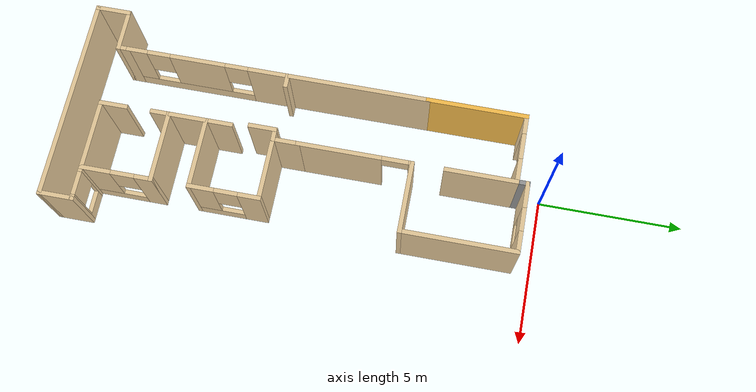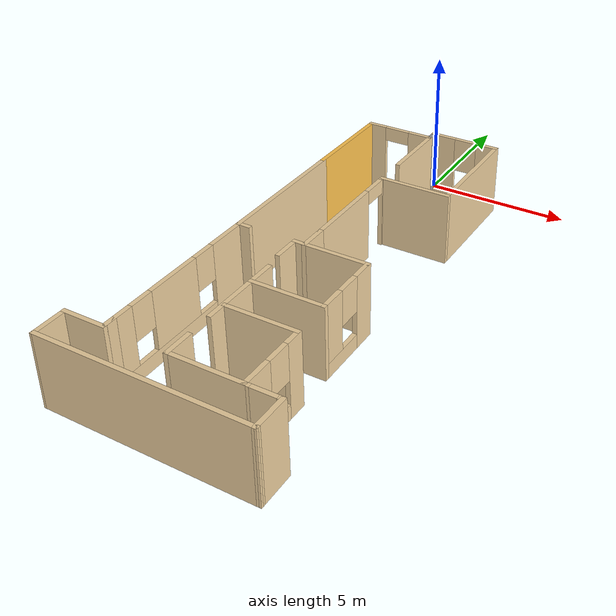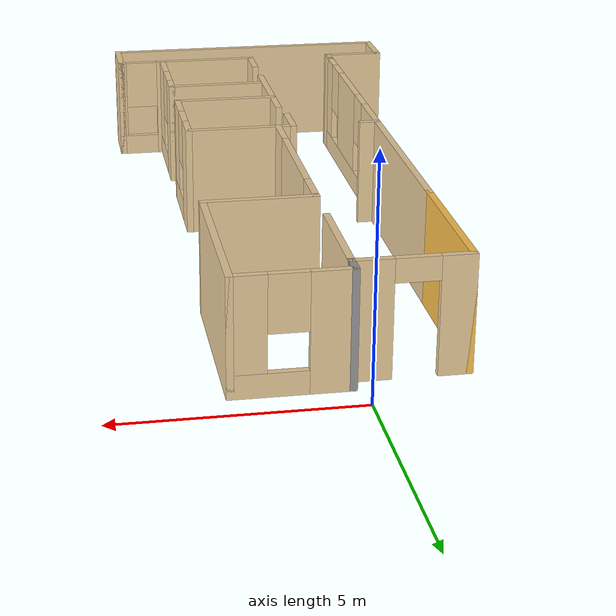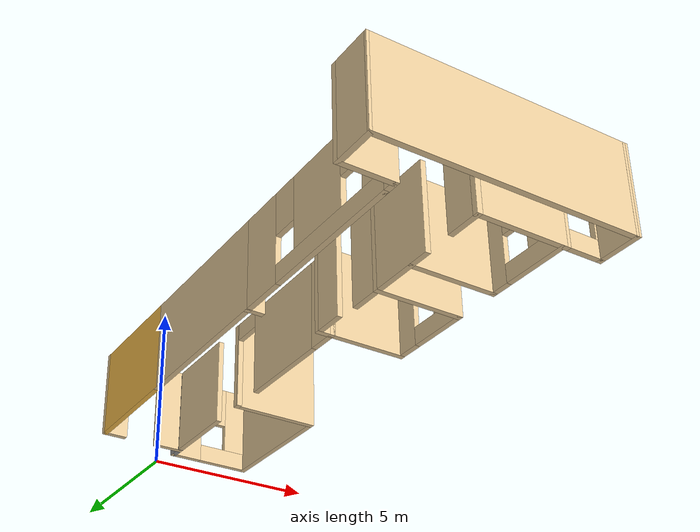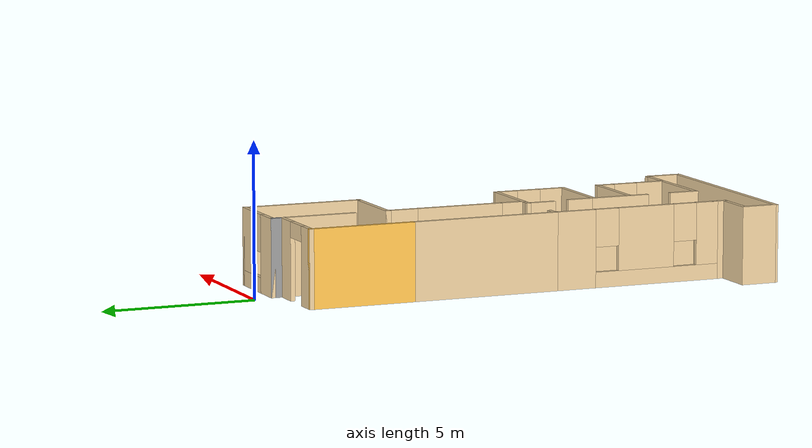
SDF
<?xml version='1.0'?>
<sdf version='1.6'>
  <model name='my_appartment'>
    <pose frame=''>-0.015 -8.49511 0 0 -0 0</pose>
    <link name='Wall_1'>
      <pose frame=''>-0.93 7.45511 0 0 -0 0</pose>
      <visual name='Wall_1_Visual_0'>
        <pose frame=''>-0.8975 0 1.25 0 -0 0</pose>
        <geometry>
          <box>
            <size>0.705 0.15 2.5</size>
          </box>
        </geometry>
        <material>
          <script>
            <uri>file://media/materials/scripts/gazebo.material</uri>
            <name>Gazebo/Grey</name>
          </script>
          <ambient>0.921569 0.807843 0.615686 1</ambient>
        </material>
        <meta>
          <layer>0</layer>
        </meta>
      </visual>
      <collision name='Wall_1_Collision_0'>
        <geometry>
          <box>
            <size>0.705 0.15 2.5</size>
          </box>
        </geometry>
        <pose frame=''>-0.8975 0 1.25 0 -0 0</pose>
      </collision>
      <visual name='Wall_1_Visual_1'>
        <pose frame=''>0.8025 0 1.25 0 -0 0</pose>
        <geometry>
          <box>
            <size>0.895 0.15 2.5</size>
          </box>
        </geometry>
        <material>
          <script>
            <uri>file://media/materials/scripts/gazebo.material</uri>
            <name>Gazebo/Grey</name>
          </script>
          <ambient>0.921569 0.807843 0.615686 1</ambient>
        </material>
        <meta>
          <layer>0</layer>
        </meta>
      </visual>
      <collision name='Wall_1_Collision_1'>
        <geometry>
          <box>
            <size>0.895 0.15 2.5</size>
          </box>
        </geometry>
        <pose frame=''>0.8025 0 1.25 0 -0 0</pose>
      </collision>
      <visual name='Wall_1_Visual_2'>
        <pose frame=''>-0.095 0 2.25 0 -0 0</pose>
        <geometry>
          <box>
            <size>0.9 0.15 0.5</size>
          </box>
        </geometry>
        <material>
          <script>
            <uri>file://media/materials/scripts/gazebo.material</uri>
            <name>Gazebo/Grey</name>
          </script>
          <ambient>0.921569 0.807843 0.615686 1</ambient>
        </material>
        <meta>
          <layer>0</layer>
        </meta>
      </visual>
      <collision name='Wall_1_Collision_2'>
        <geometry>
          <box>
            <size>0.9 0.15 0.5</size>
          </box>
        </geometry>
        <pose frame=''>-0.095 0 2.25 0 -0 0</pose>
      </collision>
    </link>
    <link name='Wall_11'>
      <pose frame=''>0.245 2.04011 0 0 0 -1.5708</pose>
      <visual name='Wall_11_Visual_0'>
        <pose frame=''>-1.9025 0 1.25 0 -0 0</pose>
        <geometry>
          <box>
            <size>0.195 0.15 2.5</size>
          </box>
        </geometry>
        <material>
          <script>
            <uri>file://media/materials/scripts/gazebo.material</uri>
            <name>Gazebo/Grey</name>
          </script>
          <ambient>0.921569 0.807843 0.615686 1</ambient>
        </material>
        <meta>
          <layer>0</layer>
        </meta>
      </visual>
      <collision name='Wall_11_Collision_0'>
        <geometry>
          <box>
            <size>0.195 0.15 2.5</size>
          </box>
        </geometry>
        <pose frame=''>-1.9025 0 1.25 0 -0 0</pose>
      </collision>
      <visual name='Wall_11_Visual_1'>
        <pose frame=''>0.5475 0 1.25 0 -0 0</pose>
        <geometry>
          <box>
            <size>2.905 0.15 2.5</size>
          </box>
        </geometry>
        <material>
          <script>
            <uri>file://media/materials/scripts/gazebo.material</uri>
            <name>Gazebo/Grey</name>
          </script>
          <ambient>0.921569 0.807843 0.615686 1</ambient>
        </material>
        <meta>
          <layer>0</layer>
        </meta>
      </visual>
      <collision name='Wall_11_Collision_1'>
        <geometry>
          <box>
            <size>2.905 0.15 2.5</size>
          </box>
        </geometry>
        <pose frame=''>0.5475 0 1.25 0 -0 0</pose>
      </collision>
      <visual name='Wall_11_Visual_2'>
        <pose frame=''>-1.355 0 2.25 0 -0 0</pose>
        <geometry>
          <box>
            <size>0.9 0.15 0.5</size>
          </box>
        </geometry>
        <material>
          <script>
            <uri>file://media/materials/scripts/gazebo.material</uri>
            <name>Gazebo/Grey</name>
          </script>
          <ambient>0.921569 0.807843 0.615686 1</ambient>
        </material>
        <meta>
          <layer>0</layer>
        </meta>
      </visual>
      <collision name='Wall_11_Collision_2'>
        <geometry>
          <box>
            <size>0.9 0.15 0.5</size>
          </box>
        </geometry>
        <pose frame=''>-1.355 0 2.25 0 -0 0</pose>
      </collision>
    </link>
    <link name='Wall_13'>
      <collision name='Wall_13_Collision'>
        <geometry>
          <box>
            <size>1 0.15 2.5</size>
          </box>
        </geometry>
        <pose frame=''>0 0 1.25 0 -0 0</pose>
      </collision>
      <visual name='Wall_13_Visual'>
        <pose frame=''>0 0 1.25 0 -0 0</pose>
        <geometry>
          <box>
            <size>1 0.15 2.5</size>
          </box>
        </geometry>
        <material>
          <script>
            <uri>file://media/materials/scripts/gazebo.material</uri>
            <name>Gazebo/Grey</name>
          </script>
          <ambient>0.921569 0.807843 0.615686 1</ambient>
        </material>
        <meta>
          <layer>0</layer>
        </meta>
      </visual>
      <pose frame=''>0.245 -0.309893 0 0 0 -1.5708</pose>
    </link>
    <link name='Wall_15'>
      <collision name='Wall_15_Collision'>
        <geometry>
          <box>
            <size>3.5 0.15 2.5</size>
          </box>
        </geometry>
        <pose frame=''>0 0 1.25 0 -0 0</pose>
      </collision>
      <visual name='Wall_15_Visual'>
        <pose frame=''>0 0 1.25 0 -0 0</pose>
        <geometry>
          <box>
            <size>3.5 0.15 2.5</size>
          </box>
        </geometry>
        <material>
          <script>
            <uri>file://media/materials/scripts/gazebo.material</uri>
            <name>Gazebo/Grey</name>
          </script>
          <ambient>1 0.764706 0.305882 1</ambient>
        </material>
        <meta>
          <layer>0</layer>
        </meta>
      </visual>
      <pose frame=''>-2.105 5.78011 0 0 0 -1.5708</pose>
    </link>
    <link name='Wall_18'>
      <collision name='Wall_18_Collision'>
        <geometry>
          <box>
            <size>5 0.15 2.5</size>
          </box>
        </geometry>
        <pose frame=''>0 0 1.25 0 -0 0</pose>
      </collision>
      <visual name='Wall_18_Visual'>
        <pose frame=''>0 0 1.25 0 -0 0</pose>
        <geometry>
          <box>
            <size>5 0.15 2.5</size>
          </box>
        </geometry>
        <material>
          <script>
            <uri>file://media/materials/scripts/gazebo.material</uri>
            <name>Gazebo/Grey</name>
          </script>
          <ambient>0.921569 0.807843 0.615686 1</ambient>
        </material>
        <meta>
          <layer>0</layer>
        </meta>
      </visual>
      <pose frame=''>-2.105 1.68011 0 0 0 -1.5708</pose>
    </link>
    <link name='Wall_19'>
      <collision name='Wall_19_Collision'>
        <geometry>
          <box>
            <size>0.5 0.15 2.5</size>
          </box>
        </geometry>
        <pose frame=''>0 0 1.25 0 -0 0</pose>
      </collision>
      <visual name='Wall_19_Visual'>
        <pose frame=''>0 0 1.25 0 -0 0</pose>
        <geometry>
          <box>
            <size>0.5 0.15 2.5</size>
          </box>
        </geometry>
        <material>
          <script>
            <uri>file://media/materials/scripts/gazebo.material</uri>
            <name>Gazebo/Grey</name>
          </script>
          <ambient>0.921569 0.807843 0.615686 1</ambient>
        </material>
        <meta>
          <layer>0</layer>
        </meta>
      </visual>
      <pose frame=''>-1.93 -0.744892 0 0 -0 0</pose>
    </link>
    <link name='Wall_2'>
      <collision name='Wall_2_Collision'>
        <geometry>
          <box>
            <size>0.52 0.15 2.5</size>
          </box>
        </geometry>
        <pose frame=''>0 0 1.25 0 -0 0</pose>
      </collision>
      <visual name='Wall_2_Visual'>
        <pose frame=''>0 0 1.25 0 -0 0</pose>
        <geometry>
          <box>
            <size>0.52 0.15 2.5</size>
          </box>
        </geometry>
        <material>
          <script>
            <uri>file://media/materials/scripts/gazebo.material</uri>
            <name>Gazebo/Grey</name>
          </script>
          <ambient>1 1 1 1</ambient>
        </material>
        <meta>
          <layer>0</layer>
        </meta>
      </visual>
      <pose frame=''>0.245 7.63011 0 0 -0 1.5708</pose>
    </link>
    <link name='Wall_21'>
      <collision name='Wall_21_Collision'>
        <geometry>
          <box>
            <size>0.5 0.15 2.5</size>
          </box>
        </geometry>
        <pose frame=''>0 0 1.25 0 -0 0</pose>
      </collision>
      <visual name='Wall_21_Visual'>
        <pose frame=''>0 0 1.25 0 -0 0</pose>
        <geometry>
          <box>
            <size>0.5 0.15 2.5</size>
          </box>
        </geometry>
        <material>
          <script>
            <uri>file://media/materials/scripts/gazebo.material</uri>
            <name>Gazebo/Grey</name>
          </script>
          <ambient>0.921569 0.807843 0.615686 1</ambient>
        </material>
        <meta>
          <layer>0</layer>
        </meta>
      </visual>
      <pose frame=''>0.07 -0.734892 0 0 -0 3.14159</pose>
    </link>
    <link name='Wall_23'>
      <collision name='Wall_23_Collision'>
        <geometry>
          <box>
            <size>1 0.15 2.5</size>
          </box>
        </geometry>
        <pose frame=''>0 0 1.25 0 -0 0</pose>
      </collision>
      <visual name='Wall_23_Visual'>
        <pose frame=''>0 0 1.25 0 -0 0</pose>
        <geometry>
          <box>
            <size>1 0.15 2.5</size>
          </box>
        </geometry>
        <material>
          <script>
            <uri>file://media/materials/scripts/gazebo.material</uri>
            <name>Gazebo/Grey</name>
          </script>
          <ambient>0.921569 0.807843 0.615686 1</ambient>
        </material>
        <meta>
          <layer>0</layer>
        </meta>
      </visual>
      <pose frame=''>-0.105 -1.15989 0 0 0 -1.5708</pose>
    </link>
    <link name='Wall_25'>
      <collision name='Wall_25_Collision'>
        <geometry>
          <box>
            <size>2.25 0.15 2.5</size>
          </box>
        </geometry>
        <pose frame=''>0 0 1.25 0 -0 0</pose>
      </collision>
      <visual name='Wall_25_Visual'>
        <pose frame=''>0 0 1.25 0 -0 0</pose>
        <geometry>
          <box>
            <size>2.25 0.15 2.5</size>
          </box>
        </geometry>
        <material>
          <script>
            <uri>file://media/materials/scripts/gazebo.material</uri>
            <name>Gazebo/Grey</name>
          </script>
          <ambient>0.921569 0.807843 0.615686 1</ambient>
        </material>
        <meta>
          <layer>0</layer>
        </meta>
      </visual>
      <pose frame=''>1.295 -0.734892 0 0 -0 0</pose>
    </link>
    <link name='Wall_26'>
      <pose frame=''>2.345 -1.90989 0 0 0 -1.5708</pose>
      <visual name='Wall_26_Visual_0'>
        <pose frame=''>-0.8575 0 1.25 0 -0 0</pose>
        <geometry>
          <box>
            <size>0.785 0.15 2.5</size>
          </box>
        </geometry>
        <material>
          <script>
            <uri>file://media/materials/scripts/gazebo.material</uri>
            <name>Gazebo/Grey</name>
          </script>
          <ambient>0.921569 0.807843 0.615686 1</ambient>
        </material>
        <meta>
          <layer>0</layer>
        </meta>
      </visual>
      <collision name='Wall_26_Collision_0'>
        <geometry>
          <box>
            <size>0.785 0.15 2.5</size>
          </box>
        </geometry>
        <pose frame=''>-0.8575 0 1.25 0 -0 0</pose>
      </collision>
      <visual name='Wall_26_Visual_1'>
        <pose frame=''>0.3925 0 0.25 0 -0 0</pose>
        <geometry>
          <box>
            <size>1.715 0.15 0.5</size>
          </box>
        </geometry>
        <material>
          <script>
            <uri>file://media/materials/scripts/gazebo.material</uri>
            <name>Gazebo/Grey</name>
          </script>
          <ambient>0.921569 0.807843 0.615686 1</ambient>
        </material>
        <meta>
          <layer>0</layer>
        </meta>
      </visual>
      <collision name='Wall_26_Collision_1'>
        <geometry>
          <box>
            <size>1.715 0.15 0.5</size>
          </box>
        </geometry>
        <pose frame=''>0.3925 0 0.25 0 -0 0</pose>
      </collision>
      <visual name='Wall_26_Visual_2'>
        <pose frame=''>0.7925 0 1.5 0 -0 0</pose>
        <geometry>
          <box>
            <size>0.915 0.15 2</size>
          </box>
        </geometry>
        <material>
          <script>
            <uri>file://media/materials/scripts/gazebo.material</uri>
            <name>Gazebo/Grey</name>
          </script>
          <ambient>0.921569 0.807843 0.615686 1</ambient>
        </material>
        <meta>
          <layer>0</layer>
        </meta>
      </visual>
      <collision name='Wall_26_Collision_2'>
        <geometry>
          <box>
            <size>0.915 0.15 2</size>
          </box>
        </geometry>
        <pose frame=''>0.7925 0 1.5 0 -0 0</pose>
      </collision>
      <visual name='Wall_26_Visual_3'>
        <pose frame=''>-0.065 0 1.9 0 -0 0</pose>
        <geometry>
          <box>
            <size>0.8 0.15 1.2</size>
          </box>
        </geometry>
        <material>
          <script>
            <uri>file://media/materials/scripts/gazebo.material</uri>
            <name>Gazebo/Grey</name>
          </script>
          <ambient>0.921569 0.807843 0.615686 1</ambient>
        </material>
        <meta>
          <layer>0</layer>
        </meta>
      </visual>
      <collision name='Wall_26_Collision_3'>
        <geometry>
          <box>
            <size>0.8 0.15 1.2</size>
          </box>
        </geometry>
        <pose frame=''>-0.065 0 1.9 0 -0 0</pose>
      </collision>
    </link>
    <link name='Wall_29'>
      <collision name='Wall_29_Collision'>
        <geometry>
          <box>
            <size>2.5 0.15 2.5</size>
          </box>
        </geometry>
        <pose frame=''>0 0 1.25 0 -0 0</pose>
      </collision>
      <visual name='Wall_29_Visual'>
        <pose frame=''>0 0 1.25 0 -0 0</pose>
        <geometry>
          <box>
            <size>2.5 0.15 2.5</size>
          </box>
        </geometry>
        <material>
          <script>
            <uri>file://media/materials/scripts/gazebo.material</uri>
            <name>Gazebo/Grey</name>
          </script>
          <ambient>0.921569 0.807843 0.615686 1</ambient>
        </material>
        <meta>
          <layer>0</layer>
        </meta>
      </visual>
      <pose frame=''>1.17 -3.08489 0 0 -0 3.14159</pose>
    </link>
    <link name='Wall_30'>
      <collision name='Wall_30_Collision'>
        <geometry>
          <box>
            <size>1 0.15 2.5</size>
          </box>
        </geometry>
        <pose frame=''>0 0 1.25 0 -0 0</pose>
      </collision>
      <visual name='Wall_30_Visual'>
        <pose frame=''>0 0 1.25 0 -0 0</pose>
        <geometry>
          <box>
            <size>1 0.15 2.5</size>
          </box>
        </geometry>
        <material>
          <script>
            <uri>file://media/materials/scripts/gazebo.material</uri>
            <name>Gazebo/Grey</name>
          </script>
          <ambient>0.921569 0.807843 0.615686 1</ambient>
        </material>
        <meta>
          <layer>0</layer>
        </meta>
      </visual>
      <pose frame=''>-0.005 -2.65989 0 0 -0 1.5708</pose>
    </link>
    <link name='Wall_32'>
      <collision name='Wall_32_Collision'>
        <geometry>
          <box>
            <size>2 0.15 2.5</size>
          </box>
        </geometry>
        <pose frame=''>0 0 1.25 0 -0 0</pose>
      </collision>
      <visual name='Wall_32_Visual'>
        <pose frame=''>0 0 1.25 0 -0 0</pose>
        <geometry>
          <box>
            <size>2 0.15 2.5</size>
          </box>
        </geometry>
        <material>
          <script>
            <uri>file://media/materials/scripts/gazebo.material</uri>
            <name>Gazebo/Grey</name>
          </script>
          <ambient>0.921569 0.807843 0.615686 1</ambient>
        </material>
        <meta>
          <layer>0</layer>
        </meta>
      </visual>
      <pose frame=''>-0.005 -4.00989 0 0 0 -1.5708</pose>
    </link>
    <link name='Wall_34'>
      <collision name='Wall_34_Collision'>
        <geometry>
          <box>
            <size>2.5 0.15 2.5</size>
          </box>
        </geometry>
        <pose frame=''>0 0 1.25 0 -0 0</pose>
      </collision>
      <visual name='Wall_34_Visual'>
        <pose frame=''>0 0 1.25 0 -0 0</pose>
        <geometry>
          <box>
            <size>2.5 0.15 2.5</size>
          </box>
        </geometry>
        <material>
          <script>
            <uri>file://media/materials/scripts/gazebo.material</uri>
            <name>Gazebo/Grey</name>
          </script>
          <ambient>0.921569 0.807843 0.615686 1</ambient>
        </material>
        <meta>
          <layer>0</layer>
        </meta>
      </visual>
      <pose frame=''>1.18 -4.36489 0 0 -0 0</pose>
    </link>
    <link name='Wall_36'>
      <pose frame=''>2.355 -5.53989 0 0 0 -1.5708</pose>
      <visual name='Wall_36_Visual_0'>
        <pose frame=''>-0.9325 0 1.25 0 -0 0</pose>
        <geometry>
          <box>
            <size>0.635 0.15 2.5</size>
          </box>
        </geometry>
        <material>
          <script>
            <uri>file://media/materials/scripts/gazebo.material</uri>
            <name>Gazebo/Grey</name>
          </script>
          <ambient>0.921569 0.807843 0.615686 1</ambient>
        </material>
        <meta>
          <layer>0</layer>
        </meta>
      </visual>
      <collision name='Wall_36_Collision_0'>
        <geometry>
          <box>
            <size>0.635 0.15 2.5</size>
          </box>
        </geometry>
        <pose frame=''>-0.9325 0 1.25 0 -0 0</pose>
      </collision>
      <visual name='Wall_36_Visual_1'>
        <pose frame=''>0.3175 0 0.25 0 -0 0</pose>
        <geometry>
          <box>
            <size>1.865 0.15 0.5</size>
          </box>
        </geometry>
        <material>
          <script>
            <uri>file://media/materials/scripts/gazebo.material</uri>
            <name>Gazebo/Grey</name>
          </script>
          <ambient>0.921569 0.807843 0.615686 1</ambient>
        </material>
        <meta>
          <layer>0</layer>
        </meta>
      </visual>
      <collision name='Wall_36_Collision_1'>
        <geometry>
          <box>
            <size>1.865 0.15 0.5</size>
          </box>
        </geometry>
        <pose frame=''>0.3175 0 0.25 0 -0 0</pose>
      </collision>
      <visual name='Wall_36_Visual_2'>
        <pose frame=''>0.7175 0 1.5 0 -0 0</pose>
        <geometry>
          <box>
            <size>1.065 0.15 2</size>
          </box>
        </geometry>
        <material>
          <script>
            <uri>file://media/materials/scripts/gazebo.material</uri>
            <name>Gazebo/Grey</name>
          </script>
          <ambient>0.921569 0.807843 0.615686 1</ambient>
        </material>
        <meta>
          <layer>0</layer>
        </meta>
      </visual>
      <collision name='Wall_36_Collision_2'>
        <geometry>
          <box>
            <size>1.065 0.15 2</size>
          </box>
        </geometry>
        <pose frame=''>0.7175 0 1.5 0 -0 0</pose>
      </collision>
      <visual name='Wall_36_Visual_3'>
        <pose frame=''>-0.215 0 1.9 0 -0 0</pose>
        <geometry>
          <box>
            <size>0.8 0.15 1.2</size>
          </box>
        </geometry>
        <material>
          <script>
            <uri>file://media/materials/scripts/gazebo.material</uri>
            <name>Gazebo/Grey</name>
          </script>
          <ambient>0.921569 0.807843 0.615686 1</ambient>
        </material>
        <meta>
          <layer>0</layer>
        </meta>
      </visual>
      <collision name='Wall_36_Collision_3'>
        <geometry>
          <box>
            <size>0.8 0.15 1.2</size>
          </box>
        </geometry>
        <pose frame=''>-0.215 0 1.9 0 -0 0</pose>
      </collision>
    </link>
    <link name='Wall_37'>
      <collision name='Wall_37_Collision'>
        <geometry>
          <box>
            <size>2.5 0.15 2.5</size>
          </box>
        </geometry>
        <pose frame=''>0 0 1.25 0 -0 0</pose>
      </collision>
      <visual name='Wall_37_Visual'>
        <pose frame=''>0 0 1.25 0 -0 0</pose>
        <geometry>
          <box>
            <size>2.5 0.15 2.5</size>
          </box>
        </geometry>
        <material>
          <script>
            <uri>file://media/materials/scripts/gazebo.material</uri>
            <name>Gazebo/Grey</name>
          </script>
          <ambient>0.921569 0.807843 0.615686 1</ambient>
        </material>
        <meta>
          <layer>0</layer>
        </meta>
      </visual>
      <pose frame=''>1.18 -6.71489 0 0 -0 3.14159</pose>
    </link>
    <link name='Wall_38'>
      <collision name='Wall_38_Collision'>
        <geometry>
          <box>
            <size>1 0.15 2.5</size>
          </box>
        </geometry>
        <pose frame=''>0 0 1.25 0 -0 0</pose>
      </collision>
      <visual name='Wall_38_Visual'>
        <pose frame=''>0 0 1.25 0 -0 0</pose>
        <geometry>
          <box>
            <size>1 0.15 2.5</size>
          </box>
        </geometry>
        <material>
          <script>
            <uri>file://media/materials/scripts/gazebo.material</uri>
            <name>Gazebo/Grey</name>
          </script>
          <ambient>0.921569 0.807843 0.615686 1</ambient>
        </material>
        <meta>
          <layer>0</layer>
        </meta>
      </visual>
      <pose frame=''>0.005 -6.28989 0 0 -0 1.5708</pose>
    </link>
    <link name='Wall_4'>
      <pose frame=''>1.42 7.81511 0 0 -0 0</pose>
      <visual name='Wall_4_Visual_0'>
        <pose frame=''>-0.7925 0 1.25 0 -0 0</pose>
        <geometry>
          <box>
            <size>0.915 0.15 2.5</size>
          </box>
        </geometry>
        <material>
          <script>
            <uri>file://media/materials/scripts/gazebo.material</uri>
            <name>Gazebo/Grey</name>
          </script>
          <ambient>0.921569 0.807843 0.615686 1</ambient>
        </material>
        <meta>
          <layer>0</layer>
        </meta>
      </visual>
      <collision name='Wall_4_Collision_0'>
        <geometry>
          <box>
            <size>0.915 0.15 2.5</size>
          </box>
        </geometry>
        <pose frame=''>-0.7925 0 1.25 0 -0 0</pose>
      </collision>
      <visual name='Wall_4_Visual_1'>
        <pose frame=''>0.4575 0 0.25 0 -0 0</pose>
        <geometry>
          <box>
            <size>1.585 0.15 0.5</size>
          </box>
        </geometry>
        <material>
          <script>
            <uri>file://media/materials/scripts/gazebo.material</uri>
            <name>Gazebo/Grey</name>
          </script>
          <ambient>0.921569 0.807843 0.615686 1</ambient>
        </material>
        <meta>
          <layer>0</layer>
        </meta>
      </visual>
      <collision name='Wall_4_Collision_1'>
        <geometry>
          <box>
            <size>1.585 0.15 0.5</size>
          </box>
        </geometry>
        <pose frame=''>0.4575 0 0.25 0 -0 0</pose>
      </collision>
      <visual name='Wall_4_Visual_2'>
        <pose frame=''>0.8575 0 1.5 0 -0 0</pose>
        <geometry>
          <box>
            <size>0.785 0.15 2</size>
          </box>
        </geometry>
        <material>
          <script>
            <uri>file://media/materials/scripts/gazebo.material</uri>
            <name>Gazebo/Grey</name>
          </script>
          <ambient>0.921569 0.807843 0.615686 1</ambient>
        </material>
        <meta>
          <layer>0</layer>
        </meta>
      </visual>
      <collision name='Wall_4_Collision_2'>
        <geometry>
          <box>
            <size>0.785 0.15 2</size>
          </box>
        </geometry>
        <pose frame=''>0.8575 0 1.5 0 -0 0</pose>
      </collision>
      <visual name='Wall_4_Visual_3'>
        <pose frame=''>0.065 0 1.9 0 -0 0</pose>
        <geometry>
          <box>
            <size>0.8 0.15 1.2</size>
          </box>
        </geometry>
        <material>
          <script>
            <uri>file://media/materials/scripts/gazebo.material</uri>
            <name>Gazebo/Grey</name>
          </script>
          <ambient>0.921569 0.807843 0.615686 1</ambient>
        </material>
        <meta>
          <layer>0</layer>
        </meta>
      </visual>
      <collision name='Wall_4_Collision_3'>
        <geometry>
          <box>
            <size>0.8 0.15 1.2</size>
          </box>
        </geometry>
        <pose frame=''>0.065 0 1.9 0 -0 0</pose>
      </collision>
    </link>
    <link name='Wall_40'>
      <pose frame=''>-2.105 -3.54489 0 0 0 -1.5708</pose>
      <visual name='Wall_40_Visual_0'>
        <pose frame=''>-2.1425 0 1.25 0 -0 0</pose>
        <geometry>
          <box>
            <size>1.465 0.15 2.5</size>
          </box>
        </geometry>
        <material>
          <script>
            <uri>file://media/materials/scripts/gazebo.material</uri>
            <name>Gazebo/Grey</name>
          </script>
          <ambient>0.921569 0.807843 0.615686 1</ambient>
        </material>
        <meta>
          <layer>0</layer>
        </meta>
      </visual>
      <collision name='Wall_40_Collision_0'>
        <geometry>
          <box>
            <size>1.465 0.15 2.5</size>
          </box>
        </geometry>
        <pose frame=''>-2.1425 0 1.25 0 -0 0</pose>
      </collision>
      <visual name='Wall_40_Visual_1'>
        <pose frame=''>0.7325 0 0.25 0 -0 0</pose>
        <geometry>
          <box>
            <size>4.285 0.15 0.5</size>
          </box>
        </geometry>
        <material>
          <script>
            <uri>file://media/materials/scripts/gazebo.material</uri>
            <name>Gazebo/Grey</name>
          </script>
          <ambient>0.921569 0.807843 0.615686 1</ambient>
        </material>
        <meta>
          <layer>0</layer>
        </meta>
      </visual>
      <collision name='Wall_40_Collision_1'>
        <geometry>
          <box>
            <size>4.285 0.15 0.5</size>
          </box>
        </geometry>
        <pose frame=''>0.7325 0 0.25 0 -0 0</pose>
      </collision>
      <visual name='Wall_40_Visual_2'>
        <pose frame=''>0.355 0 1.5 0 -0 0</pose>
        <geometry>
          <box>
            <size>1.93 0.15 2</size>
          </box>
        </geometry>
        <material>
          <script>
            <uri>file://media/materials/scripts/gazebo.material</uri>
            <name>Gazebo/Grey</name>
          </script>
          <ambient>0.921569 0.807843 0.615686 1</ambient>
        </material>
        <meta>
          <layer>0</layer>
        </meta>
      </visual>
      <collision name='Wall_40_Collision_2'>
        <geometry>
          <box>
            <size>1.93 0.15 2</size>
          </box>
        </geometry>
        <pose frame=''>0.355 0 1.5 0 -0 0</pose>
      </collision>
      <visual name='Wall_40_Visual_3'>
        <pose frame=''>2.4975 0 1.5 0 -0 0</pose>
        <geometry>
          <box>
            <size>0.755 0.15 2</size>
          </box>
        </geometry>
        <material>
          <script>
            <uri>file://media/materials/scripts/gazebo.material</uri>
            <name>Gazebo/Grey</name>
          </script>
          <ambient>0.921569 0.807843 0.615686 1</ambient>
        </material>
        <meta>
          <layer>0</layer>
        </meta>
      </visual>
      <collision name='Wall_40_Collision_3'>
        <geometry>
          <box>
            <size>0.755 0.15 2</size>
          </box>
        </geometry>
        <pose frame=''>2.4975 0 1.5 0 -0 0</pose>
      </collision>
      <visual name='Wall_40_Visual_4'>
        <pose frame=''>-1.01 0 1.9 0 -0 0</pose>
        <geometry>
          <box>
            <size>0.8 0.15 1.2</size>
          </box>
        </geometry>
        <material>
          <script>
            <uri>file://media/materials/scripts/gazebo.material</uri>
            <name>Gazebo/Grey</name>
          </script>
          <ambient>0.921569 0.807843 0.615686 1</ambient>
        </material>
        <meta>
          <layer>0</layer>
        </meta>
      </visual>
      <collision name='Wall_40_Collision_4'>
        <geometry>
          <box>
            <size>0.8 0.15 1.2</size>
          </box>
        </geometry>
        <pose frame=''>-1.01 0 1.9 0 -0 0</pose>
      </collision>
      <visual name='Wall_40_Visual_5'>
        <pose frame=''>1.72 0 1.9 0 -0 0</pose>
        <geometry>
          <box>
            <size>0.8 0.15 1.2</size>
          </box>
        </geometry>
        <material>
          <script>
            <uri>file://media/materials/scripts/gazebo.material</uri>
            <name>Gazebo/Grey</name>
          </script>
          <ambient>0.921569 0.807843 0.615686 1</ambient>
        </material>
        <meta>
          <layer>0</layer>
        </meta>
      </visual>
      <collision name='Wall_40_Collision_5'>
        <geometry>
          <box>
            <size>0.8 0.15 1.2</size>
          </box>
        </geometry>
        <pose frame=''>1.72 0 1.9 0 -0 0</pose>
      </collision>
    </link>
    <link name='Wall_42'>
      <collision name='Wall_42_Collision'>
        <geometry>
          <box>
            <size>0.5 0.15 2.5</size>
          </box>
        </geometry>
        <pose frame=''>0 0 1.25 0 -0 0</pose>
      </collision>
      <visual name='Wall_42_Visual'>
        <pose frame=''>0 0 1.25 0 -0 0</pose>
        <geometry>
          <box>
            <size>0.5 0.15 2.5</size>
          </box>
        </geometry>
        <material>
          <script>
            <uri>file://media/materials/scripts/gazebo.material</uri>
            <name>Gazebo/Grey</name>
          </script>
          <ambient>0.921569 0.807843 0.615686 1</ambient>
        </material>
        <meta>
          <layer>0</layer>
        </meta>
      </visual>
      <pose frame=''>-2.105 -6.51989 0 0 0 -1.5708</pose>
    </link>
    <link name='Wall_44'>
      <collision name='Wall_44_Collision'>
        <geometry>
          <box>
            <size>1.5 0.15 2.5</size>
          </box>
        </geometry>
        <pose frame=''>0 0 1.25 0 -0 0</pose>
      </collision>
      <visual name='Wall_44_Visual'>
        <pose frame=''>0 0 1.25 0 -0 0</pose>
        <geometry>
          <box>
            <size>1.5 0.15 2.5</size>
          </box>
        </geometry>
        <material>
          <script>
            <uri>file://media/materials/scripts/gazebo.material</uri>
            <name>Gazebo/Grey</name>
          </script>
          <ambient>0.921569 0.807843 0.615686 1</ambient>
        </material>
        <meta>
          <layer>0</layer>
        </meta>
      </visual>
      <pose frame=''>-2.78 -6.69489 0 0 -0 3.14159</pose>
    </link>
    <link name='Wall_45'>
      <collision name='Wall_45_Collision'>
        <geometry>
          <box>
            <size>1.25 0.15 2.5</size>
          </box>
        </geometry>
        <pose frame=''>0 0 1.25 0 -0 0</pose>
      </collision>
      <visual name='Wall_45_Visual'>
        <pose frame=''>0 0 1.25 0 -0 0</pose>
        <geometry>
          <box>
            <size>1.25 0.15 2.5</size>
          </box>
        </geometry>
        <material>
          <script>
            <uri>file://media/materials/scripts/gazebo.material</uri>
            <name>Gazebo/Grey</name>
          </script>
          <ambient>0.921569 0.807843 0.615686 1</ambient>
        </material>
        <meta>
          <layer>0</layer>
        </meta>
      </visual>
      <pose frame=''>-3.455 -7.24489 0 0 0 -1.5708</pose>
    </link>
    <link name='Wall_47'>
      <pose frame=''>2.905 -6.71489 0 0 -0 0</pose>
      <visual name='Wall_47_Visual_0'>
        <pose frame=''>-0.5025 0 1.25 0 -0 0</pose>
        <geometry>
          <box>
            <size>0.245 0.15 2.5</size>
          </box>
        </geometry>
        <material>
          <script>
            <uri>file://media/materials/scripts/gazebo.material</uri>
            <name>Gazebo/Grey</name>
          </script>
          <ambient>0.921569 0.807843 0.615686 1</ambient>
        </material>
        <meta>
          <layer>0</layer>
        </meta>
      </visual>
      <collision name='Wall_47_Collision_0'>
        <geometry>
          <box>
            <size>0.245 0.15 2.5</size>
          </box>
        </geometry>
        <pose frame=''>-0.5025 0 1.25 0 -0 0</pose>
      </collision>
      <visual name='Wall_47_Visual_1'>
        <pose frame=''>0.1225 0 0.25 0 -0 0</pose>
        <geometry>
          <box>
            <size>1.005 0.15 0.5</size>
          </box>
        </geometry>
        <material>
          <script>
            <uri>file://media/materials/scripts/gazebo.material</uri>
            <name>Gazebo/Grey</name>
          </script>
          <ambient>0.921569 0.807843 0.615686 1</ambient>
        </material>
        <meta>
          <layer>0</layer>
        </meta>
      </visual>
      <collision name='Wall_47_Collision_1'>
        <geometry>
          <box>
            <size>1.005 0.15 0.5</size>
          </box>
        </geometry>
        <pose frame=''>0.1225 0 0.25 0 -0 0</pose>
      </collision>
      <visual name='Wall_47_Visual_2'>
        <pose frame=''>0.5225 0 1.5 0 -0 0</pose>
        <geometry>
          <box>
            <size>0.205 0.15 2</size>
          </box>
        </geometry>
        <material>
          <script>
            <uri>file://media/materials/scripts/gazebo.material</uri>
            <name>Gazebo/Grey</name>
          </script>
          <ambient>0.921569 0.807843 0.615686 1</ambient>
        </material>
        <meta>
          <layer>0</layer>
        </meta>
      </visual>
      <collision name='Wall_47_Collision_2'>
        <geometry>
          <box>
            <size>0.205 0.15 2</size>
          </box>
        </geometry>
        <pose frame=''>0.5225 0 1.5 0 -0 0</pose>
      </collision>
      <visual name='Wall_47_Visual_3'>
        <pose frame=''>0.02 0 1.9 0 -0 0</pose>
        <geometry>
          <box>
            <size>0.8 0.15 1.2</size>
          </box>
        </geometry>
        <material>
          <script>
            <uri>file://media/materials/scripts/gazebo.material</uri>
            <name>Gazebo/Grey</name>
          </script>
          <ambient>0.921569 0.807843 0.615686 1</ambient>
        </material>
        <meta>
          <layer>0</layer>
        </meta>
      </visual>
      <collision name='Wall_47_Collision_3'>
        <geometry>
          <box>
            <size>0.8 0.15 1.2</size>
          </box>
        </geometry>
        <pose frame=''>0.02 0 1.9 0 -0 0</pose>
      </collision>
    </link>
    <link name='Wall_48'>
      <collision name='Wall_48_Collision'>
        <geometry>
          <box>
            <size>1.25 0.15 2.5</size>
          </box>
        </geometry>
        <pose frame=''>0 0 1.25 0 -0 0</pose>
      </collision>
      <visual name='Wall_48_Visual'>
        <pose frame=''>0 0 1.25 0 -0 0</pose>
        <geometry>
          <box>
            <size>1.25 0.15 2.5</size>
          </box>
        </geometry>
        <material>
          <script>
            <uri>file://media/materials/scripts/gazebo.material</uri>
            <name>Gazebo/Grey</name>
          </script>
          <ambient>0.921569 0.807843 0.615686 1</ambient>
        </material>
        <meta>
          <layer>0</layer>
        </meta>
      </visual>
      <pose frame=''>3.455 -7.26489 0 0 0 -1.5708</pose>
    </link>
    <link name='Wall_49'>
      <collision name='Wall_49_Collision'>
        <geometry>
          <box>
            <size>7.06003 0.15 2.5</size>
          </box>
        </geometry>
        <pose frame=''>0 0 1.25 0 -0 0</pose>
      </collision>
      <visual name='Wall_49_Visual'>
        <pose frame=''>0 0 1.25 0 -0 0</pose>
        <geometry>
          <box>
            <size>7.06003 0.15 2.5</size>
          </box>
        </geometry>
        <material>
          <script>
            <uri>file://media/materials/scripts/gazebo.material</uri>
            <name>Gazebo/Grey</name>
          </script>
          <ambient>0.921569 0.807843 0.615686 1</ambient>
        </material>
        <meta>
          <layer>0</layer>
        </meta>
      </visual>
      <pose frame=''>0 -7.80489 0 0 -0 3.1387</pose>
    </link>
    <link name='Wall_6'>
      <collision name='Wall_6_Collision'>
        <geometry>
          <box>
            <size>2.5 0.15 2.5</size>
          </box>
        </geometry>
        <pose frame=''>0 0 1.25 0 -0 0</pose>
      </collision>
      <visual name='Wall_6_Visual'>
        <pose frame=''>0 0 1.25 0 -0 0</pose>
        <geometry>
          <box>
            <size>2.5 0.15 2.5</size>
          </box>
        </geometry>
        <material>
          <script>
            <uri>file://media/materials/scripts/gazebo.material</uri>
            <name>Gazebo/Grey</name>
          </script>
          <ambient>0.921569 0.807843 0.615686 1</ambient>
        </material>
        <meta>
          <layer>0</layer>
        </meta>
      </visual>
      <pose frame=''>0.245 6.27011 0 0 0 -1.5708</pose>
    </link>
    <link name='Wall_8'>
      <collision name='Wall_8_Collision'>
        <geometry>
          <box>
            <size>4 0.15 2.5</size>
          </box>
        </geometry>
        <pose frame=''>0 0 1.25 0 -0 0</pose>
      </collision>
      <visual name='Wall_8_Visual'>
        <pose frame=''>0 0 1.25 0 -0 0</pose>
        <geometry>
          <box>
            <size>4 0.15 2.5</size>
          </box>
        </geometry>
        <material>
          <script>
            <uri>file://media/materials/scripts/gazebo.material</uri>
            <name>Gazebo/Grey</name>
          </script>
          <ambient>0.921569 0.807843 0.615686 1</ambient>
        </material>
        <meta>
          <layer>0</layer>
        </meta>
      </visual>
      <pose frame=''>2.595 5.89011 0 0 0 -1.5708</pose>
    </link>
    <link name='Wall_9'>
      <collision name='Wall_9_Collision'>
        <geometry>
          <box>
            <size>2.5 0.15 2.5</size>
          </box>
        </geometry>
        <pose frame=''>0 0 1.25 0 -0 0</pose>
      </collision>
      <visual name='Wall_9_Visual'>
        <pose frame=''>0 0 1.25 0 -0 0</pose>
        <geometry>
          <box>
            <size>2.5 0.15 2.5</size>
          </box>
        </geometry>
        <material>
          <script>
            <uri>file://media/materials/scripts/gazebo.material</uri>
            <name>Gazebo/Grey</name>
          </script>
          <ambient>0.921569 0.807843 0.615686 1</ambient>
        </material>
        <meta>
          <layer>0</layer>
        </meta>
      </visual>
      <pose frame=''>1.42 3.96511 0 0 -0 3.14159</pose>
    </link>
    <static>1</static>
  </model>
</sdf>
